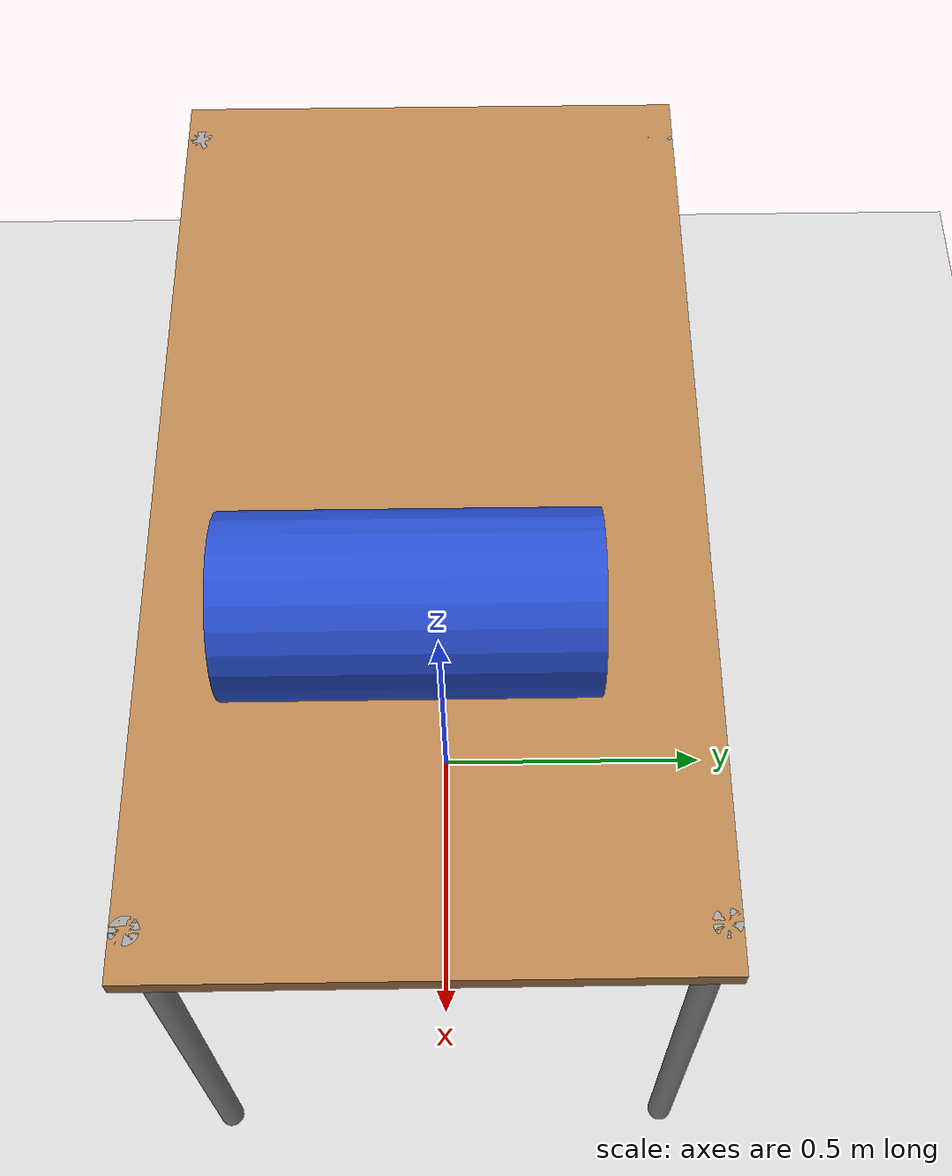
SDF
<sdf version='1.6'>
  <world name='default'>

    <light name='sun' type='directional'>
      <cast_shadows>1</cast_shadows>
      <pose frame=''>0 0 10 0 -0 0</pose>
      <diffuse>0.8 0.8 0.8 1</diffuse>
      <specular>0.2 0.2 0.2 1</specular>
      <attenuation>
        <range>1000</range>
        <constant>0.9</constant>
        <linear>0.01</linear>
        <quadratic>0.001</quadratic>
      </attenuation>
      <direction>-0.5 0.1 -0.9</direction>
    </light>

    <model name='ground_plane'>
      <static>1</static>
      <link name='link'>
        <collision name='collision'>
          <geometry>
            <plane>
              <normal>0 0 1</normal>
              <size>100 100</size>
            </plane>
          </geometry>
          <surface>
            <contact>
              <collide_bitmask>65535</collide_bitmask>
              <ode/>
            </contact>
            <friction>
              <ode>
                <mu>100</mu>
                <mu2>50</mu2>
              </ode>
              <torsional>
                <ode/>
              </torsional>
            </friction>
            <bounce/>
          </surface>
          <max_contacts>10</max_contacts>
        </collision>
        <visual name='visual'>
          <cast_shadows>0</cast_shadows>
          <geometry>
            <plane>
              <normal>0 0 1</normal>
              <size>100 100</size>
            </plane>
          </geometry>
          <material>
            <script>
              <uri>file://media/materials/scripts/gazebo.material</uri>
              <name>Gazebo/Grey</name>
            </script>
          </material>
        </visual>
        <self_collide>0</self_collide>
        <enable_wind>0</enable_wind>
        <kinematic>0</kinematic>
      </link>
    </model>

    <gravity>0 0 -9.8</gravity>
    <magnetic_field>6e-06 2.3e-05 -4.2e-05</magnetic_field>
    <atmosphere type='adiabatic'/>
    <physics name='default_physics' default='0' type='ode'>
      <max_step_size>0.001</max_step_size>
      <real_time_factor>1</real_time_factor>
      <real_time_update_rate>1000</real_time_update_rate>
    </physics>
    <scene>
      <ambient>0.4 0.4 0.4 1</ambient>
      <background>0.7 0.7 0.7 1</background>
      <shadows>1</shadows>
    </scene>
    <audio>
      <device>default</device>
    </audio>
    <wind/>
    <spherical_coordinates>
      <surface_model>EARTH_WGS84</surface_model>
      <latitude_deg>0</latitude_deg>
      <longitude_deg>0</longitude_deg>
      <elevation>0</elevation>
      <heading_deg>0</heading_deg>
    </spherical_coordinates>
    <gui fullscreen='0'>
      <camera name='user_camera'>
        <pose frame=''>5.27134 -4.00834 4.67211 0 0.564737 2.53272</pose>
        <view_controller>orbit</view_controller>
        <projection_type>perspective</projection_type>
      </camera>
    </gui>

  <include>
    <uri>model://table</uri>
  </include>

  <!-- Moving cylinder -->
    <model name="obstacle_1">
      <static>false</static>
      <pose>0.5 0 1.5 1.57 0 0</pose>
      <link name="link">
        <gravity>false</gravity>
        <collision name="collision">
          <geometry>
            <cylinder>
              <radius>0.1</radius>
              <length>0.4</length>
            </cylinder>
          </geometry>
        </collision>

        <visual name="visual">
          <geometry>
            <cylinder>
              <radius>0.1</radius>
              <length>0.4</length>
            </cylinder>
          </geometry>
          <material>
            <script>
              <name>Gazebo/Blue</name>
              <uri>file://media/materials/scripts/gazebo.material</uri>
            </script>
          </material>
        </visual>
      </link>

      <plugin name="bound_random_move" filename="libbound_random_move_pose.so"/>

    </model>

    <!-- Moving cylinder_2 -->
    <model name="obstacle_2">
      <static>false</static>
      <pose>0.5 0 1.5 1.57 0 0</pose>
      <link name="link">
        <gravity>false</gravity>
        <collision name="collision">
          <geometry>
            <cylinder>
              <radius>0.1</radius>
              <length>0.4</length>
            </cylinder>
          </geometry>
        </collision>

        <visual name="visual">
          <geometry>
            <cylinder>
              <radius>0.1</radius>
              <length>0.4</length>
            </cylinder>
          </geometry>
          <material>
            <script>
              <name>Gazebo/Blue</name>
              <uri>file://media/materials/scripts/gazebo.material</uri>
            </script>
          </material>
        </visual>
      </link>

      <plugin name="bound_random_move" filename="libbound_random_move_pose.so"/>

    </model>

  </world>
</sdf>

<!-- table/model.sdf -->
<sdf version="1.5">
  <model name="table">
    <static>true</static>
    <link name="link">
      <collision name="surface">
        <pose>0 0 0.985 0 0 0</pose>
        <geometry>
          <box>
            <size>1.5 0.8 0.03</size>
          </box>
        </geometry>
        <surface>
          <friction>
            <ode>
              <mu>0.6</mu>
              <mu2>0.6</mu2>
            </ode>
          </friction>
        </surface>
      </collision>
      <visual name="visual1">
        <pose>0 0 0.985 0 0 0</pose>
        <geometry>
          <box>
            <size>1.5 0.8 0.03</size>
          </box>
        </geometry>
        <material>
          <script>
            <uri>file://media/materials/scripts/gazebo.material</uri>
            <name>Gazebo/Wood</name>
          </script>
        </material>
      </visual>
      <collision name="front_left_leg">
        <pose>0.68 0.38 0.5 0 0 0</pose>
        <geometry>
          <cylinder>
            <radius>0.02</radius>
            <length>1.0</length>
          </cylinder>
        </geometry>
      </collision>
      <visual name="front_left_leg">
        <pose>0.68 0.38 0.5 0 0 0</pose>
        <geometry>
          <cylinder>
            <radius>0.02</radius>
            <length>1.0</length>
          </cylinder>
        </geometry>
        <material>
          <script>
            <uri>file://media/materials/scripts/gazebo.material</uri>
            <name>Gazebo/Grey</name>
          </script>
        </material>
      </visual>
      <collision name="front_right_leg">
        <pose>0.68 -0.38 0.5 0 0 0</pose>
        <geometry>
          <cylinder>
            <radius>0.02</radius>
            <length>1.0</length>
          </cylinder>
        </geometry>
      </collision>
      <visual name="front_right_leg">
        <pose>0.68 -0.38 0.5 0 0 0</pose>
        <geometry>
          <cylinder>
            <radius>0.02</radius>
            <length>1.0</length>
          </cylinder>
        </geometry>
        <material>
          <script>
            <uri>file://media/materials/scripts/gazebo.material</uri>
            <name>Gazebo/Grey</name>
          </script>
        </material>
      </visual>
      <collision name="back_right_leg">
        <pose>-0.68 -0.38 0.5 0 0 0</pose>
        <geometry>
          <cylinder>
            <radius>0.02</radius>
            <length>1.0</length>
          </cylinder>
        </geometry>
      </collision>
      <visual name="back_right_leg">
        <pose>-0.68 -0.38 0.5 0 0 0</pose>
        <geometry>
          <cylinder>
            <radius>0.02</radius>
            <length>1.0</length>
          </cylinder>
        </geometry>
        <material>
          <script>
            <uri>file://media/materials/scripts/gazebo.material</uri>
            <name>Gazebo/Grey</name>
          </script>
        </material>
      </visual>
      <collision name="back_left_leg">
        <pose>-0.68 0.38 0.5 0 0 0</pose>
        <geometry>
          <cylinder>
            <radius>0.02</radius>
            <length>1.0</length>
          </cylinder>
        </geometry>
      </collision>
      <visual name="back_left_leg">
        <pose>-0.68 0.38 0.5 0 0 0</pose>
        <geometry>
          <cylinder>
            <radius>0.02</radius>
            <length>1.0</length>
          </cylinder>
        </geometry>
        <material>
          <script>
            <uri>file://media/materials/scripts/gazebo.material</uri>
            <name>Gazebo/Grey</name>
          </script>
        </material>
      </visual>
    </link>
  </model>
</sdf>
